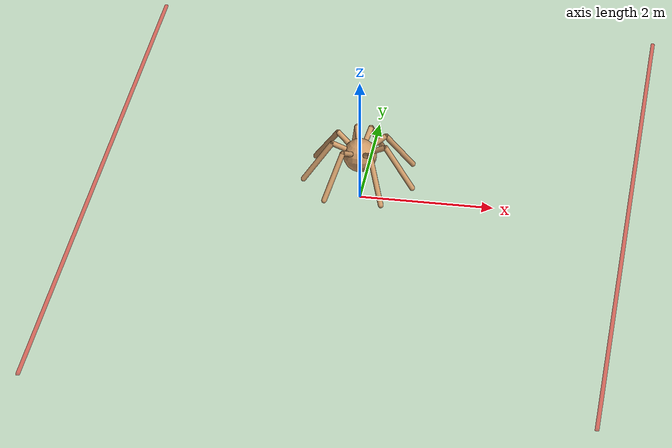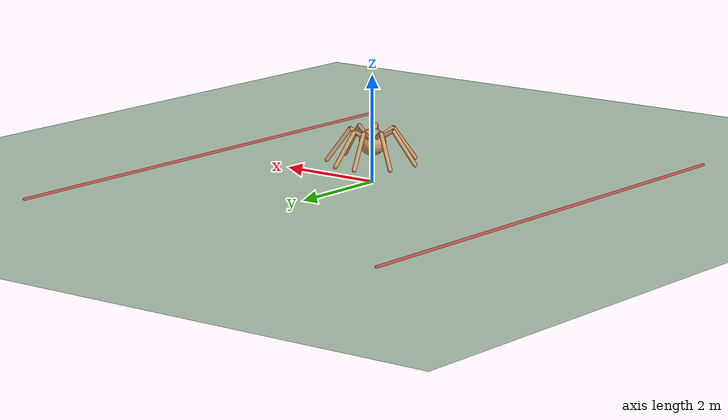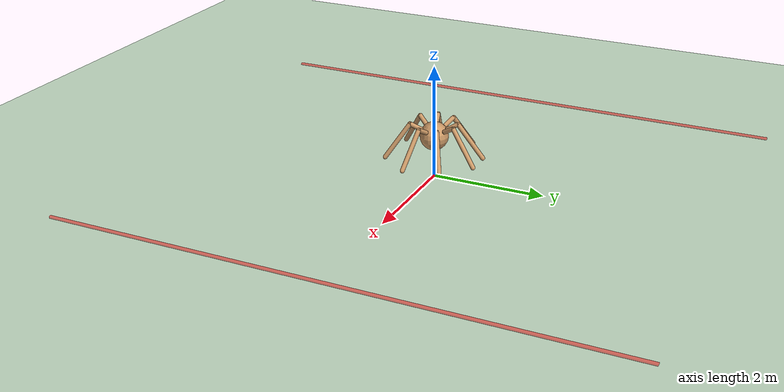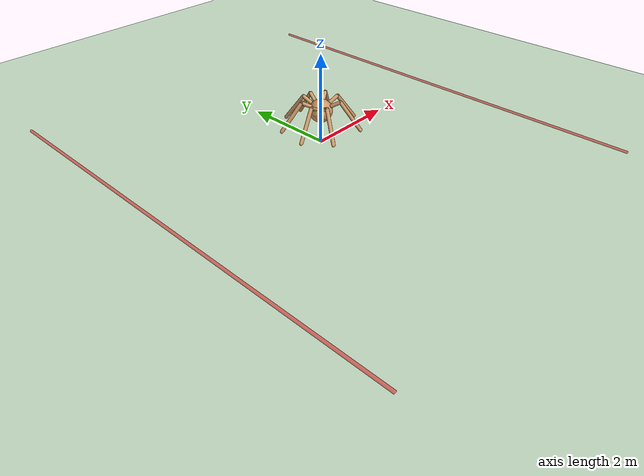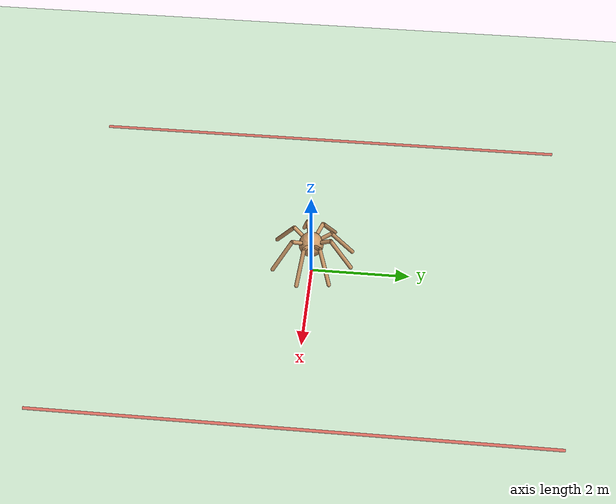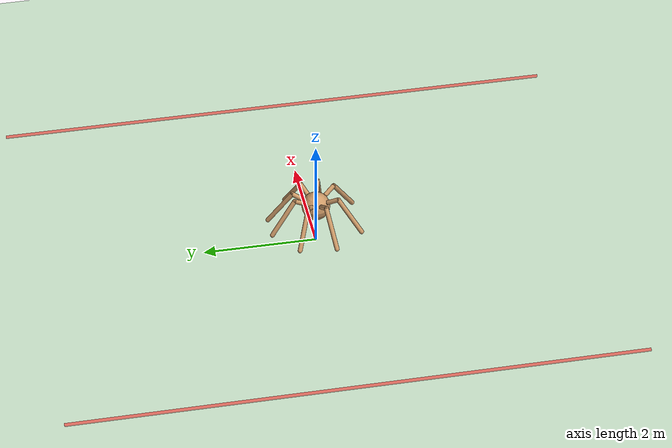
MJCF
<mujoco model="mutiagent_world">
  <compiler angle="degree" coordinate="local" inertiafromgeom="true"/>
  <option integrator="RK4" timestep="0.003" solver="PGS" iterations="1000"/>

  <visual>
    <headlight ambient=".1 .1 .1" diffuse=".6 .6 .6" specular="0.3 0.3 0.3"/>
    <map znear=".01"/>
    <quality shadowsize="16384"/>
  </visual>

  <default>
    <geom conaffinity="1" condim="3" density="5.0" friction="1 0.5 0.5" margin="0.01" rgba="0.8 0.6 0.4 1" material="geom"/>
    <motor ctrllimited="true" ctrlrange="-1. 1."/>
    <joint armature="1" damping="1" limited="true"/>
  </default>

  <asset>
    <texture builtin="gradient" height="100" rgb1=".4 .5 .6" rgb2="0 0 0" type="skybox" width="100"/>
    <texture builtin="flat" height="1278" mark="cross" markrgb="0 0 0" name="texgeom" random="0.01" rgb1="0.8 0.6 0.4" rgb2="1 1 1" type="cube" width="127"/>
    <texture builtin="checker" height="100" name="texplane" rgb1="0 0 0" rgb2="0.8 0.8 0.8" type="2d" width="100"/>
    <material name="geom" texture="texgeom" texuniform="true"/>
    <texture name="MatPlane" type="2d" builtin="checker" rgb1="0.9 0.9 0.9" rgb2="0.76 0.76 0.76" width="300" height="300" mark="edge" markrgb="0.2 0.2 0.2"/>
    <material name="MatPlane" texture="MatPlane" texrepeat="1 1" texuniform="true" reflectance=".2"/>
  </asset>

  <worldbody>
    <light cutoff="100" diffuse="1 1 1" dir="-0 0 -1.3" directional="true" exponent="1" pos="0 0 1.3" specular=".1 .1 .1"/>
    <geom contype="1" conaffinity="1" friction="1 .1 .1" condim="3" material="MatPlane" name="floor" pos="0 0 0" rgba="0.8 0.9 0.8 1" size="20 20 0.125" type="plane"/>
    <geom fromto="4 -5 0  4 +5 0" name="rightgoal" rgba="1 0 0 0.5" size=".03" type="cylinder"/>
    <geom fromto="-4 -5 0  -4 +5 0" name="leftgoal" rgba="1 0 0 0.5" size=".03" type="cylinder"/>

    <body name="torso" pos="0 0 0.75">
      <geom name="torso_geom" pos="0 0 0" size="0.25" type="sphere"/>
      <joint armature="0" damping="0" limited="false" margin="0.01" name="root" pos="0 0 0" type="free"/>
      <!-- Back right leg -->
      <body name="back_right_leg" pos="0 0 0">
        <geom density="5.0" fromto="0 0 0 -0.056 0.209 0.125" name="aux_1_geom" size="0.04" type="capsule"/>
        <body name="aux_11" pos="-0.056 0.209 0.125">
          <joint axis="0 0 1" name="hip_1" pos="0 0 0" range="-20 20" type="hinge"/>
          <geom density="5.0" fromto="0 0 0 -0.050 0.188 0.113" name="back_right_leg_geom" size="0.04" type="capsule"/>
          <body name="aux_12" pos="-0.050 0.188 0.113">
            <joint axis="0.97 0.26 0" name="ankle_1" pos="0 0 0" range="-35 45" type="hinge"/>
            <geom density="5.0" fromto="0 0 0 -0.112 0.418 -0.600" name="back_right_ankle_geom" size="0.04" type="capsule"/>
          </body>
        </body>
      </body>
      <!-- Back left leg -->
      <body name="back_left_leg" pos="0 0 0">
        <geom density="5.0" fromto="0 0 0 0.056 0.209 0.125" name="aux_2_geom" size="0.04" type="capsule"/>
        <body name="aux_21" pos="0.056 0.209 0.125">
          <joint axis="0 0 1" name="hip_2" pos="0 0 0" range="-20 20" type="hinge"/>
          <geom density="5.0" fromto="0 0 0 0.050 0.188 0.113" name="back_left_leg_geom" size="0.04" type="capsule"/>
          <body name="aux_22" pos="0.050 0.188 0.113">
            <joint axis="-0.97 0.26 0" name="ankle_2" pos="0 0 0" range="-45 35" type="hinge"/>
            <geom density="5.0" fromto="0 0 0 0.112 0.418 -0.600" name="back_left_ankle_geom" size="0.04" type="capsule"/>
          </body>
        </body>
      </body>
      <!-- Middle-back right leg -->
      <body name="middle_back_right_leg" pos="0 0 0">
        <geom density="5.0" fromto="0 0 0 -0.188 0.108 0.125" name="aux_3_geom" size="0.04" type="capsule"/>
        <body name="aux_31" pos="-0.188 0.108 0.125">
          <joint axis="0 0 1" name="hip_3" pos="0 0 0" range="-20 20" type="hinge"/>
          <geom density="5.0" fromto="0 0 0 -0.170 0.097 0.113" name="middle_back_right_leg_geom" size="0.04" type="capsule"/>
          <body name="aux_32" pos="-0.170 0.097 0.113">
            <joint axis="0.50 0.87 0" name="ankle_3" pos="0 0 0" range="-35 45" type="hinge"/>
            <geom density="5.0" fromto="0 0 0 -0.376 0.216 -0.600" name="middle_back_right_ankle_geom" size="0.04" type="capsule"/>
          </body>
        </body>
      </body>
      <!-- Middle-back right leg -->
      <body name="middle_back_left_leg" pos="0 0 0">
        <geom density="5.0" fromto="0 0 0 0.188 0.108 0.125" name="aux_4_geom" size="0.04" type="capsule"/>
        <body name="aux_41" pos="0.188 0.108 0.125">
          <joint axis="0 0 1" name="hip_4" pos="0 0 0" range="-20 20" type="hinge"/>
          <geom density="5.0" fromto="0 0 0 0.170 0.097 0.113" name="middle_back_left_leg_geom" size="0.04" type="capsule"/>
          <body name="aux_42" pos="0.170 0.097 0.113">
            <joint axis="-0.50 0.87 0" name="ankle_4" pos="0 0 0" range="-45 35" type="hinge"/>
            <geom density="5.0" fromto="0 0 0 0.376 0.216 -0.600" name="middle_back_left_ankle_geom" size="0.04" type="capsule"/>
          </body>
        </body>
      </body>
      <!-- Middle-front right leg -->
      <body name="middle_front_right_leg" pos="0 0 0">
        <geom density="5.0" fromto="0 0 0 -0.209 -0.056 0.125" name="aux_5_geom" size="0.04" type="capsule"/>
        <body name="aux_51" pos="-0.209 -0.056 0.125">
          <joint axis="0 0 1" name="hip_5" pos="0 0 0" range="-20 20" type="hinge"/>
          <geom density="5.0" fromto="0 0 0 -0.188 -0.050 0.113" name="middle_front_right_leg_geom" size="0.04" type="capsule"/>
          <body name="aux_52" pos="-0.188 -0.050 0.113">
            <joint axis="-0.26 0.97 0" name="ankle_5" pos="0 0 0" range="-35 45" type="hinge"/>
            <geom density="5.0" fromto="0 0 0 -0.418 -0.112 -0.600" name="middle_front_right_ankle_geom" size="0.04" type="capsule"/>
          </body>
        </body>
      </body>
      <!-- Middle-front right leg -->
      <body name="middle_front_left_leg" pos="0 0 0">
        <geom density="5.0" fromto="0 0 0 0.209 -0.056 0.125" name="aux_6_geom" size="0.04" type="capsule"/>
        <body name="aux_61" pos="0.209 -0.056 0.125">
          <joint axis="0 0 1" name="hip_6" pos="0 0 0" range="-20 20" type="hinge"/>
          <geom density="5.0" fromto="0 0 0 0.188 -0.050 0.113" name="middle_front_left_leg_geom" size="0.04" type="capsule"/>
          <body name="aux_62" pos="0.188 -0.050 0.113">
            <joint axis="0.26 0.97 0" name="ankle_6" pos="0 0 0" range="-45 35" type="hinge"/>
            <geom density="5.0" fromto="0 0 0 0.418 -0.112 -0.600" name="middle_front_left_ankle_geom" size="0.04" type="capsule"/>
          </body>
        </body>
      </body>
      <!-- Front right leg -->
      <body name="front_right_leg" pos="0 0 0">
        <geom density="5.0" fromto="0 0 0 -0.108 -0.188 0.125" name="aux_7_geom" size="0.04" type="capsule"/>
        <body name="aux_71" pos="-0.108 -0.188 0.125">
          <joint axis="0 0 1" name="hip_7" pos="0 0 0" range="-20 20" type="hinge"/>
          <geom density="5.0" fromto="0 0 0 -0.097 -0.170 0.113" name="front_right_leg_geom" size="0.04" type="capsule"/>
          <body name="aux_72" pos="-0.097 -0.170 0.113">
            <joint axis="-0.87 0.50 0" name="ankle_7" pos="0 0 0" range="-35 45" type="hinge"/>
            <geom density="5.0" fromto="0 0 0 -0.216 -0.376 -0.600" name="front_right_ankle_geom" size="0.04" type="capsule"/>
          </body>
        </body>
      </body>
      <!-- Front left leg -->
      <body name="front_left_leg" pos="0 0 0">
        <geom density="5.0" fromto="0 0 0 0.108 -0.188 0.125" name="aux_8_geom" size="0.04" type="capsule"/>
        <body name="aux_81" pos="0.108 -0.188 0.125">
          <joint axis="0 0 1" name="hip_8" pos="0 0 0" range="-20 20" type="hinge"/>
          <geom density="5.0" fromto="0 0 0 0.097 -0.170 0.113" name="front_left_leg_geom" size="0.04" type="capsule"/>
          <body name="aux_82" pos="0.097 -0.170 0.113">
            <joint axis="0.87 0.50 0" name="ankle_8" pos="0 0 0" range="-45 35" type="hinge"/>
            <geom density="5.0" fromto="0 0 0 0.216 -0.376 -0.600" name="front_left_ankle_geom" size="0.04" type="capsule"/>
          </body>
        </body>
      </body>
    </body>
  </worldbody>

  <actuator>
    <motor ctrllimited="true" ctrlrange="-1.0 1.0" joint="hip_1" gear="150"/>
    <motor ctrllimited="true" ctrlrange="-1.0 1.0" joint="ankle_1" gear="150"/>
    <motor ctrllimited="true" ctrlrange="-1.0 1.0" joint="hip_2" gear="150"/>
    <motor ctrllimited="true" ctrlrange="-1.0 1.0" joint="ankle_2" gear="150"/>
    <motor ctrllimited="true" ctrlrange="-1.0 1.0" joint="hip_3" gear="150"/>
    <motor ctrllimited="true" ctrlrange="-1.0 1.0" joint="ankle_3" gear="150"/>
    <motor ctrllimited="true" ctrlrange="-1.0 1.0" joint="hip_4" gear="150"/>
    <motor ctrllimited="true" ctrlrange="-1.0 1.0" joint="ankle_4" gear="150"/>
    <motor ctrllimited="true" ctrlrange="-1.0 1.0" joint="hip_5" gear="150"/>
    <motor ctrllimited="true" ctrlrange="-1.0 1.0" joint="ankle_5" gear="150"/>
    <motor ctrllimited="true" ctrlrange="-1.0 1.0" joint="hip_6" gear="150"/>
    <motor ctrllimited="true" ctrlrange="-1.0 1.0" joint="ankle_6" gear="150"/>
    <motor ctrllimited="true" ctrlrange="-1.0 1.0" joint="hip_7" gear="150"/>
    <motor ctrllimited="true" ctrlrange="-1.0 1.0" joint="ankle_7" gear="150"/>
    <motor ctrllimited="true" ctrlrange="-1.0 1.0" joint="hip_8" gear="150"/>
    <motor ctrllimited="true" ctrlrange="-1.0 1.0" joint="ankle_8" gear="150"/>
  </actuator>
  <sensor>
    <!-- Positions -->
    <jointpos name='pos_hip_1' joint='hip_1' />
    <jointpos name='pos_hip_2' joint='hip_2' />
    <jointpos name='pos_hip_3' joint='hip_3' />
    <jointpos name='pos_hip_4' joint='hip_4' />
    <jointpos name='pos_hip_5' joint='hip_5' />
    <jointpos name='pos_hip_6' joint='hip_6' />
    <jointpos name='pos_hip_7' joint='hip_7' />
    <jointpos name='pos_hip_8' joint='hip_8' />
    <jointpos name='pos_ankle_1' joint='ankle_1' />
    <jointpos name='pos_ankle_2' joint='ankle_2' />
    <jointpos name='pos_ankle_3' joint='ankle_3' />
    <jointpos name='pos_ankle_4' joint='ankle_4' />
    <jointpos name='pos_ankle_5' joint='ankle_5' />
    <jointpos name='pos_ankle_6' joint='ankle_6' />
    <jointpos name='pos_ankle_7' joint='ankle_7' />
    <jointpos name='pos_ankle_8' joint='ankle_8' />
    <!-- Velocities -->
    <jointvel name='vel_hip_1'   joint='hip_1' />
    <jointvel name='vel_hip_2'   joint='hip_2' />
    <jointvel name='vel_hip_3'   joint='hip_3' />
    <jointvel name='vel_hip_4'   joint='hip_4' />
    <jointvel name='vel_hip_5'   joint='hip_5' />
    <jointvel name='vel_hip_6'   joint='hip_6' />
    <jointvel name='vel_hip_7'   joint='hip_7' />
    <jointvel name='vel_hip_8'   joint='hip_8' />
    <jointvel name='vel_ankle_1' joint='ankle_1' />
    <jointvel name='vel_ankle_2' joint='ankle_2' />
    <jointvel name='vel_ankle_3' joint='ankle_3' />
    <jointvel name='vel_ankle_4' joint='ankle_4' />
    <jointvel name='vel_ankle_5' joint='ankle_5' />
    <jointvel name='vel_ankle_6' joint='ankle_6' />
    <jointvel name='vel_ankle_7' joint='ankle_7' />
    <jointvel name='vel_ankle_8' joint='ankle_8' />
  </sensor>

</mujoco>
